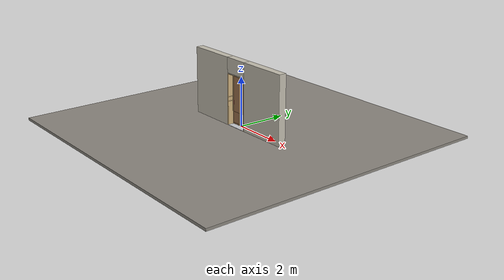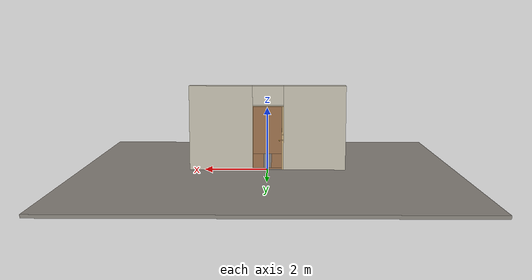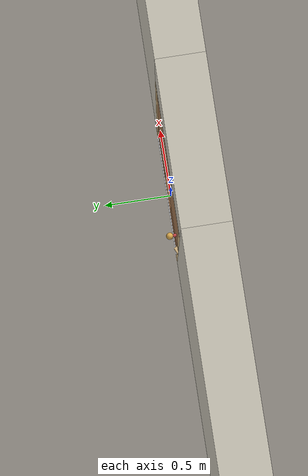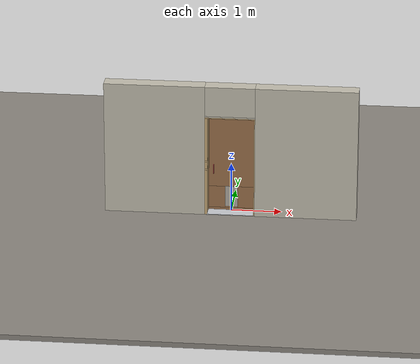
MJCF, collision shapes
<?xml version="1.0" ?>
<mujoco model="db0767_swing_single_minimal">
  <compiler angle="radian" meshdir="../../hardware" texturedir="../../textures" autolimits="true" inertiafromgeom="false"/>
  <option timestep="0.002" integrator="implicitfast" cone="elliptic" impratio="10" noslip_iterations="3">
    <flag multiccd="enable"/>
  </option>
  <size memory="16M"/>
  <default>
    <geom condim="4" solref="0.005 1" solimp="0.95 0.99 0.001"/>
    <joint solreflimit="0.005 1" solimplimit="0.95 0.99 0.001"/>
    <tendon solreflimit="0.005 1"/>
    <equality solref="0.002 1"/>
  </default>
  <visual>
    <headlight ambient="0.4 0.4 0.4" diffuse="0.7 0.7 0.7" specular="0.2 0.2 0.2"/>
    <quality shadowsize="4096"/>
    <map znear="0.01" zfar="60"/>
  </visual>
  <asset>
    <mesh name="handleset_beb5526ad2" file="handleset_beb5526ad2.obj"/>
    <mesh name="knob_d1888f6f03" file="knob_d1888f6f03.obj"/>
    <material name="mat_floor" rgba="0.55 0.53 0.5 1" specular="0.2" shininess="0.15" reflectance="0"/>
    <material name="mat_wall" rgba="0.78 0.76 0.7 1" specular="0.2" shininess="0.1" reflectance="0"/>
    <material name="mat_leaf" rgba="0.62 0.45 0.3 1" specular="0.2" shininess="0.5" reflectance="0"/>
    <material name="mat_glass" rgba="0.85 0.92 0.95 0.25" specular="0.2" shininess="0.95" reflectance="0.1"/>
    <material name="mat_hinge" rgba="0.65 0.66 0.68 1" specular="0.74" shininess="0.5" reflectance="0.36"/>
    <material name="mat_op_bronze" rgba="0.3 0.22 0.15 1" specular="0.74" shininess="0.5" reflectance="0.36"/>
    <material name="mat_op_brass" rgba="0.85 0.66 0.3 1" specular="0.8" shininess="0.75" reflectance="0.4"/>
    <material name="mat_trim" rgba="0.85 0.66 0.3 1" specular="0.8" shininess="0.75" reflectance="0.4"/>
    <material name="mat_bolt" rgba="0.85 0.66 0.3 1" specular="0.8" shininess="0.75" reflectance="0.4"/>
    <material name="mat_deadbolt" rgba="0.85 0.66 0.3 1" specular="0.8" shininess="0.75" reflectance="0.4"/>
    <material name="mat_frame" rgba="0.82 0.7 0.5 1" specular="0.2" shininess="0.45" reflectance="0"/>
    <material name="mat_seal" rgba="0.1 0.1 0.1 1" specular="0.2" shininess="0.1" reflectance="0"/>
    <material name="mat_threshold" rgba="0.8 0.81 0.83 1" specular="0.8" shininess="0.6" reflectance="0.4"/>
    <material name="mat_closer" rgba="0.22 0.17 0.13 1" specular="0.8" shininess="0.6" reflectance="0.4"/>
    <material name="mat_petframe" rgba="0.92 0.92 0.9 1" specular="0.2" shininess="0.6" reflectance="0"/>
    <material name="mat_petflap" rgba="0.85 0.9 0.95 0.45" specular="0.2" shininess="0.7" reflectance="0.1"/>
    <texture name="skybox" type="skybox" builtin="gradient" rgb1="0.6 0.7 0.85" rgb2="0.9 0.92 0.95" width="256" height="256"/>
  </asset>
  <worldbody>
    <light name="sun" pos="1.5 -2.5 4" dir="-0.3 0.5 -0.8" directional="true" diffuse="0.8 0.8 0.8" specular="0.3 0.3 0.3" castshadow="true"/>
    <light name="fill" pos="-1.5 2.5 3" dir="0.3 -0.5 -0.7" directional="true" diffuse="0.35 0.35 0.4" castshadow="false"/>
    <camera name="robot_view" pos="0 -2.663187 1.734312" xyaxes="1 0 0 0 0.26963 0.962964" fovy="52"/>
    <camera name="far_view" pos="0 2.421187 1.734312" xyaxes="-1 0 0 0 -0.26963 0.962964" fovy="52"/>
    <camera name="iso" pos="-1.932062 -2.256438 2.141063" xyaxes="0.741536 -0.670913 0 0.242917 0.268487 0.932151" fovy="46"/>
    <camera name="detail_handle" pos="-0.1715 -0.882 1.185" xyaxes="0.97561 0.219512 0 -0.070934 0.315262 0.94635" fovy="38"/>
    <geom name="floor" type="box" size="6 6 0.05" pos="0 0 -0.05" material="mat_floor" group="0" contype="1" conaffinity="1" friction="0.8 0.005 0.0001" density="2400"/>
    <geom name="wall_left" type="box" size="0.99525 0.15 1.35" pos="-1.50475 -0.121 1.35" material="mat_wall" group="0" contype="1" conaffinity="1" friction="0.6 0.005 0.0001" density="800"/>
    <geom name="wall_right" type="box" size="1.01025 0.15 1.35" pos="1.48975 -0.121 1.35" material="mat_wall" group="0" contype="1" conaffinity="1" friction="0.6 0.005 0.0001" density="800"/>
    <geom name="wall_header" type="box" size="0.4945 0.15 0.303" pos="-0.015 -0.121 2.397" material="mat_wall" group="0" contype="1" conaffinity="1" friction="0.6 0.005 0.0001" density="800"/>
    <geom name="jamb_hinge" type="box" size="0.0095 0.15 1.0225" pos="0.47 -0.121 1.0225" material="mat_frame" group="0" contype="1" conaffinity="1" friction="0.6 0.005 0.0001" density="400"/>
    <geom name="strike_965_wall_n" type="box" size="0.0245 0.131575 0.0167" pos="-0.485 -0.139425 0.965" material="mat_frame" group="0" contype="1" conaffinity="1" friction="0.6 0.005 0.0001" density="400"/>
    <geom name="strike_965_wall_p" type="box" size="0.0245 0.008 0.0167" pos="-0.485 0.01585 0.965" material="mat_frame" group="0" contype="1" conaffinity="1" friction="0.6 0.005 0.0001" density="400"/>
    <geom name="strike_965_ramp" type="box" size="0.0245 0.01649 0.0167" pos="-0.489636 0.028673 0.965" quat="0.977148 0 0 0.212558" material="mat_frame" group="0" contype="1" conaffinity="1" friction="0.12 0.005 0.0001" density="400"/>
    <geom name="strike_965_back" type="box" size="0.01615 0.00785 0.0167" pos="-0.49335 0 0.965" material="mat_frame" group="0" contype="1" conaffinity="1" friction="0.6 0.005 0.0001" density="400"/>
    <geom name="strike_1140_wall_n" type="box" size="0.0245 0.13075 0.0155" pos="-0.485 -0.14025 1.14" material="mat_frame" group="0" contype="1" conaffinity="1" friction="0.6 0.005 0.0001" density="400"/>
    <geom name="strike_1140_wall_p" type="box" size="0.0245 0.00975 0.0155" pos="-0.485 0.01925 1.14" material="mat_frame" group="0" contype="1" conaffinity="1" friction="0.6 0.005 0.0001" density="400"/>
    <geom name="strike_1140_back" type="box" size="0.0098 0.0095 0.0155" pos="-0.4997 0 1.14" material="mat_frame" group="0" contype="1" conaffinity="1" friction="0.6 0.005 0.0001" density="400"/>
    <geom name="jamb_strike_0" type="box" size="0.0245 0.15 0.47415" pos="-0.485 -0.121 0.47415" material="mat_frame" group="0" contype="1" conaffinity="1" friction="0.6 0.005 0.0001" density="400"/>
    <geom name="jamb_strike_1" type="box" size="0.0245 0.15 0.0714" pos="-0.485 -0.121 1.0531" material="mat_frame" group="0" contype="1" conaffinity="1" friction="0.6 0.005 0.0001" density="400"/>
    <geom name="jamb_strike_2" type="box" size="0.0245 0.15 0.44475" pos="-0.485 -0.121 1.60025" material="mat_frame" group="0" contype="1" conaffinity="1" friction="0.6 0.005 0.0001" density="400"/>
    <geom name="jamb_head" type="box" size="0.4945 0.15 0.0095" pos="-0.015 -0.121 2.0545" material="mat_frame" group="0" contype="1" conaffinity="1" friction="0.6 0.005 0.0001" density="400"/>
    <geom name="head_stud" type="box" size="0.4945 0.15 0.015" pos="-0.015 -0.121 2.079" material="mat_wall" group="0" contype="1" conaffinity="1" friction="0.6 0.005 0.0001" density="500"/>
    <geom name="stop_hinge" type="box" size="0.0055 0.016 1.0225" pos="0.455 -0.0385 1.0225" material="mat_frame" group="0" contype="1" conaffinity="1" friction="0.6 0.005 0.0001" density="400"/>
    <geom name="stop_strike" type="box" size="0.0055 0.016 1.0225" pos="-0.455 -0.0385 1.0225" material="mat_frame" group="0" contype="1" conaffinity="1" friction="0.6 0.005 0.0001" density="400"/>
    <geom name="stop_head" type="box" size="0.4605 0.016 0.0055" pos="0 -0.0385 2.0395" material="mat_frame" group="0" contype="1" conaffinity="1" friction="0.6 0.005 0.0001" density="400"/>
    <geom name="threshold" type="box" size="0.4795 0.15 0.0065" pos="0 -0.121 0.0065" material="mat_threshold" group="0" contype="1" conaffinity="1" friction="0.5 0.005 0.0001" density="2700"/>
    <site name="approach_point" pos="0 -1.5 0" quat="1 0 0 0" size="0.05" rgba="0.2 0.9 0.2 0.5" group="4"/>
    <site name="goal_point" pos="0 1.5 0" quat="1 0 0 0" size="0.05" rgba="0.2 0.9 0.2 0.5" group="4"/>
    <site name="door_plane_center" pos="0 0 1.0225" quat="1 0 0 0" size="0.02" rgba="0.2 0.9 0.2 0.5" group="4"/>
    <body name="leaf" pos="0.4605 0 0">
      <inertial pos="-0.476874 -0.00241 1.069094" mass="42.910923" quat="0.50528 -0.500589 -0.5 -0.494068" diaginertia="3.271337495 13.350274437 16.596548129"/>
      <joint name="leaf_hinge" type="hinge" axis="0 0 -1" pos="-0.003 0.029 0" limited="true" range="0 1.570796" solreflimit="0.02 1" damping="6.25611" frictionloss="1.71993" stiffness="10.625184" springref="-1.309154" armature="0.02"/>
      <geom name="leaf_slab_below" type="box" size="0.457 0.022 0.0245" pos="-0.46 0 0.0415" material="mat_leaf" group="0" contype="1" conaffinity="1" friction="0.4 0.005 0.0001" density="1"/>
      <geom name="leaf_slab_above" type="box" size="0.457 0.022 0.7615" pos="-0.46 0 1.2795" material="mat_leaf" group="0" contype="1" conaffinity="1" friction="0.4 0.005 0.0001" density="1"/>
      <geom name="leaf_slab_left" type="box" size="0.1655 0.022 0.226" pos="-0.7515 0 0.292" material="mat_leaf" group="0" contype="1" conaffinity="1" friction="0.4 0.005 0.0001" density="1"/>
      <geom name="leaf_slab_right" type="box" size="0.1655 0.022 0.226" pos="-0.1685 0 0.292" material="mat_leaf" group="0" contype="1" conaffinity="1" friction="0.4 0.005 0.0001" density="1"/>
      <geom name="leaf_handleset_n" type="mesh" mesh="handleset_beb5526ad2" pos="-0.812 -0.022 0.905" quat="0.707107 0.707107 0 0" material="mat_op_bronze" group="1" contype="0" conaffinity="0" density="3000"/>
      <geom name="leaf_handleset_col_n" type="capsule" size="0.011 0.09" pos="-0.812 -0.082 0.905" material="mat_op_bronze" group="3" contype="1" conaffinity="1" rgba="0.8 0.3 0.3 0.25" friction="0.7 0.01 0.0001" density="3000"/>
      <site name="leaf_handleset_grip_n" pos="-0.812 -0.082 0.905" quat="1 0 0 0" size="0.012" rgba="0.2 0.9 0.2 0.5" group="4"/>
      <site name="leaf_edge_mid" pos="-0.917 0 1.012" quat="1 0 0 0" size="0.02" rgba="0.2 0.9 0.2 0.5" group="4"/>
      <body name="leaf_handle" pos="-0.847 0 0.965">
        <inertial pos="0 0.058082 0" mass="0.549341" quat="0.707107 0 0 -0.707107" diaginertia="0.000155778 0.000270874 0.000270874"/>
        <joint name="leaf_handle_hinge" type="hinge" axis="0 1 0" limited="true" range="0 0.87" damping="0.142525" frictionloss="0.038" stiffness="0.5" springref="-0.5" armature="0.01"/>
        <geom name="leaf_handle_knob_p" type="mesh" mesh="knob_d1888f6f03" pos="0 0.022 0" quat="0 0 0.707107 0.707107" material="mat_op_brass" group="1" contype="0" conaffinity="0" density="3000"/>
        <geom name="leaf_handle_knob_col_p" type="sphere" size="0.0243" pos="0 0.0685 0" material="mat_op_brass" group="0" contype="1" conaffinity="1" friction="0.9 0.01 0.0001" density="3000"/>
        <geom name="leaf_handle_knob_neck_p" type="cylinder" size="0.011 0.012" pos="0 0.034 0" quat="0.707107 -0.707107 0 0" material="mat_op_brass" group="3" contype="1" conaffinity="1" rgba="0.8 0.3 0.3 0.25" friction="0.6 0.005 0.0001" density="3000"/>
        <site name="leaf_handle_grip_p" pos="0 0.0685 0" quat="1 0 0 0" size="0.012" rgba="0.2 0.9 0.2 0.5" group="4"/>
      </body>
      <body name="leaf_latch_bolt" pos="-0.917 0 0.965">
        <inertial pos="0.00865 0 0" mass="0.041419" quat="0.92388 0.382683 0 0" diaginertia="0.000000798 0.000005598 0.000005598"/>
        <joint name="leaf_latch_bolt_slide" type="slide" axis="1 0 0" limited="true" range="0 0.0127" damping="2" frictionloss="0.3" stiffness="300" springref="-0.008333" armature="0.1"/>
        <geom name="leaf_latch_bolt_capsule" type="capsule" size="0.00635 0.015" pos="0.00865 0 0" quat="0.707107 0 -0.707107 0" material="mat_bolt" group="0" contype="1" conaffinity="1" friction="0.2 0.005 0.0001" density="8500"/>
      </body>
    </body>
  </worldbody>
  <tendon>
    <fixed name="leaf_latch_bolt_coupling" limited="true" range="0 10">
      <joint joint="leaf_latch_bolt_slide" coef="1"/>
      <joint joint="leaf_handle_hinge" coef="-0.015679"/>
    </fixed>
  </tendon>
  <sensor>
    <jointpos name="leaf_hinge_pos" joint="leaf_hinge"/>
    <jointvel name="leaf_hinge_vel" joint="leaf_hinge"/>
    <jointpos name="leaf_handle_hinge_pos" joint="leaf_handle_hinge"/>
    <jointvel name="leaf_handle_hinge_vel" joint="leaf_handle_hinge"/>
    <jointpos name="leaf_latch_bolt_slide_pos" joint="leaf_latch_bolt_slide"/>
    <jointvel name="leaf_latch_bolt_slide_vel" joint="leaf_latch_bolt_slide"/>
  </sensor>
</mujoco>
